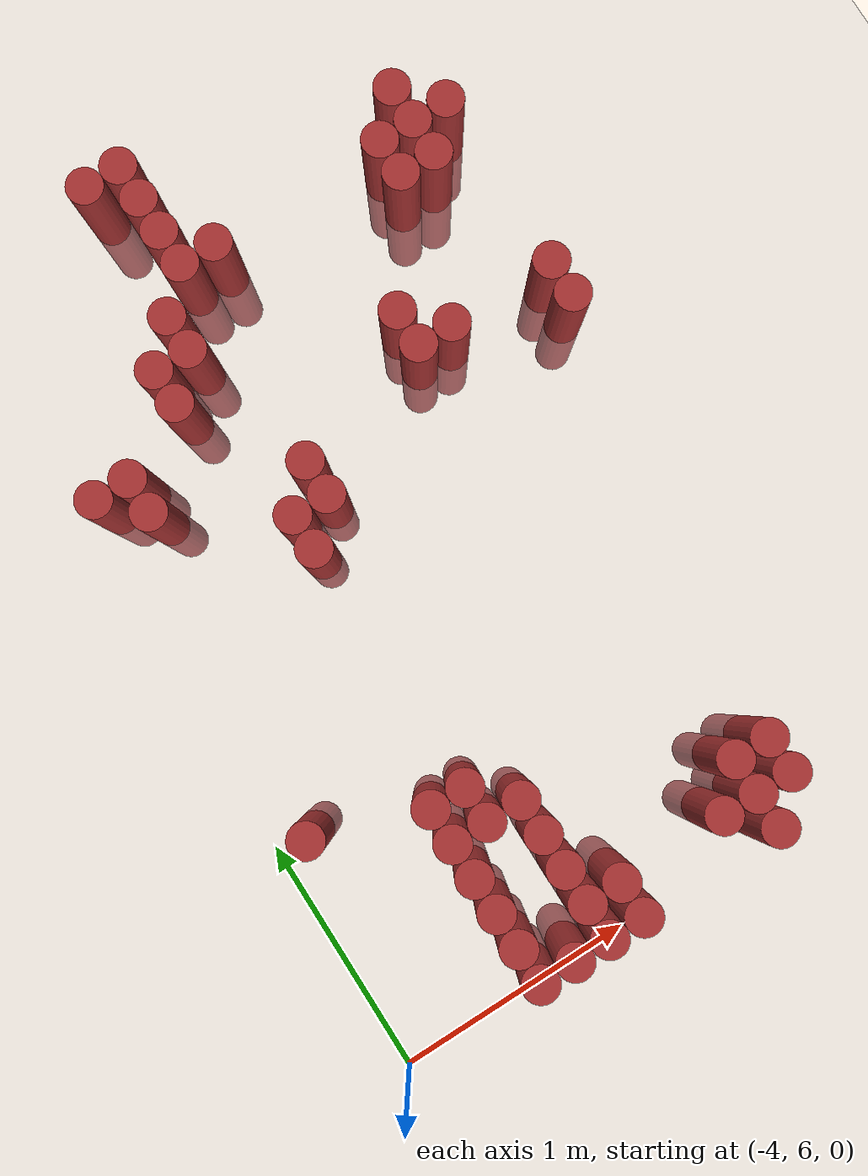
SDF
<sdf version="1.6">
 <world name="default">
  <model name="ground_plane">
   <static>1</static>
   <link name="link">
    <collision name="collision">
     <geometry><plane><normal>0 0 1</normal><size>100 100</size></plane></geometry>
     <surface><friction><ode><mu>100</mu><mu2>50</mu2></ode></friction></surface>
    </collision>
    <visual name="visual">
     <cast_shadows>0</cast_shadows>
     <geometry><plane><normal>0 0 1</normal><size>100 100</size></plane></geometry>
     <material>
      <script><uri>file://media/materials/scripts/gazebo.material</uri><name>Gazebo/Grey</name></script>
     </material>
    </visual>
   </link>
  </model>
  <model name="unit_cylinder_161">
   <static>1</static>
   <pose>-3.825000 6.975000 0.000000 0.000000 0.000000 0.000000</pose>
   <link name="link">
    <inertial>
     <mass>1</mass>
     <inertia><ixx>0.145833</ixx><ixy>0</ixy><ixz>0</ixz><iyy>0.145833</iyy><iyz>0</iyz><izz>0.125</izz></inertia>
    </inertial>
    <collision name="collision">
     <geometry><cylinder><radius>0.075000</radius><length>1</length></cylinder></geometry>
    </collision>
    <visual name="visual">
     <geometry><cylinder><radius>0.075000</radius><length>1</length></cylinder></geometry>
     <material>
      <ambient>0.648000 0.192000 0.192000 1</ambient>
      <diffuse>0.648000 0.192000 0.192000 1</diffuse>
     </material>
     <material>
      <script><name>Gazebo/Grey</name><uri>file://media/materials/scripts/gazebo.material</uri></script>
     </material>
    </visual>
   </link>
  </model>
  <model name="unit_cylinder_162">
   <static>1</static>
   <pose>-3.825000 8.475000 0.000000 0.000000 0.000000 0.000000</pose>
   <link name="link">
    <inertial>
     <mass>1</mass>
     <inertia><ixx>0.145833</ixx><ixy>0</ixy><ixz>0</ixz><iyy>0.145833</iyy><iyz>0</iyz><izz>0.125</izz></inertia>
    </inertial>
    <collision name="collision">
     <geometry><cylinder><radius>0.075000</radius><length>1</length></cylinder></geometry>
    </collision>
    <visual name="visual">
     <geometry><cylinder><radius>0.075000</radius><length>1</length></cylinder></geometry>
     <material>
      <ambient>0.648000 0.192000 0.192000 1</ambient>
      <diffuse>0.648000 0.192000 0.192000 1</diffuse>
     </material>
     <material>
      <script><name>Gazebo/Grey</name><uri>file://media/materials/scripts/gazebo.material</uri></script>
     </material>
    </visual>
   </link>
  </model>
  <model name="unit_cylinder_164">
   <static>1</static>
   <pose>-3.675000 8.325000 0.000000 0.000000 0.000000 0.000000</pose>
   <link name="link">
    <inertial>
     <mass>1</mass>
     <inertia><ixx>0.145833</ixx><ixy>0</ixy><ixz>0</ixz><iyy>0.145833</iyy><iyz>0</iyz><izz>0.125</izz></inertia>
    </inertial>
    <collision name="collision">
     <geometry><cylinder><radius>0.075000</radius><length>1</length></cylinder></geometry>
    </collision>
    <visual name="visual">
     <geometry><cylinder><radius>0.075000</radius><length>1</length></cylinder></geometry>
     <material>
      <ambient>0.648000 0.192000 0.192000 1</ambient>
      <diffuse>0.648000 0.192000 0.192000 1</diffuse>
     </material>
     <material>
      <script><name>Gazebo/Grey</name><uri>file://media/materials/scripts/gazebo.material</uri></script>
     </material>
    </visual>
   </link>
  </model>
  <model name="unit_cylinder_165">
   <static>1</static>
   <pose>-3.675000 8.475000 0.000000 0.000000 0.000000 0.000000</pose>
   <link name="link">
    <inertial>
     <mass>1</mass>
     <inertia><ixx>0.145833</ixx><ixy>0</ixy><ixz>0</ixz><iyy>0.145833</iyy><iyz>0</iyz><izz>0.125</izz></inertia>
    </inertial>
    <collision name="collision">
     <geometry><cylinder><radius>0.075000</radius><length>1</length></cylinder></geometry>
    </collision>
    <visual name="visual">
     <geometry><cylinder><radius>0.075000</radius><length>1</length></cylinder></geometry>
     <material>
      <ambient>0.648000 0.192000 0.192000 1</ambient>
      <diffuse>0.648000 0.192000 0.192000 1</diffuse>
     </material>
     <material>
      <script><name>Gazebo/Grey</name><uri>file://media/materials/scripts/gazebo.material</uri></script>
     </material>
    </visual>
   </link>
  </model>
  <model name="unit_cylinder_172">
   <static>1</static>
   <pose>-3.375000 6.075000 0.000000 0.000000 0.000000 0.000000</pose>
   <link name="link">
    <inertial>
     <mass>1</mass>
     <inertia><ixx>0.145833</ixx><ixy>0</ixy><ixz>0</ixz><iyy>0.145833</iyy><iyz>0</iyz><izz>0.125</izz></inertia>
    </inertial>
    <collision name="collision">
     <geometry><cylinder><radius>0.075000</radius><length>1</length></cylinder></geometry>
    </collision>
    <visual name="visual">
     <geometry><cylinder><radius>0.075000</radius><length>1</length></cylinder></geometry>
     <material>
      <ambient>0.648000 0.192000 0.192000 1</ambient>
      <diffuse>0.648000 0.192000 0.192000 1</diffuse>
     </material>
     <material>
      <script><name>Gazebo/Grey</name><uri>file://media/materials/scripts/gazebo.material</uri></script>
     </material>
    </visual>
   </link>
  </model>
  <model name="unit_cylinder_173">
   <static>1</static>
   <pose>-3.375000 6.225000 0.000000 0.000000 0.000000 0.000000</pose>
   <link name="link">
    <inertial>
     <mass>1</mass>
     <inertia><ixx>0.145833</ixx><ixy>0</ixy><ixz>0</ixz><iyy>0.145833</iyy><iyz>0</iyz><izz>0.125</izz></inertia>
    </inertial>
    <collision name="collision">
     <geometry><cylinder><radius>0.075000</radius><length>1</length></cylinder></geometry>
    </collision>
    <visual name="visual">
     <geometry><cylinder><radius>0.075000</radius><length>1</length></cylinder></geometry>
     <material>
      <ambient>0.648000 0.192000 0.192000 1</ambient>
      <diffuse>0.648000 0.192000 0.192000 1</diffuse>
     </material>
     <material>
      <script><name>Gazebo/Grey</name><uri>file://media/materials/scripts/gazebo.material</uri></script>
     </material>
    </visual>
   </link>
  </model>
  <model name="unit_cylinder_174">
   <static>1</static>
   <pose>-3.375000 6.375000 0.000000 0.000000 0.000000 0.000000</pose>
   <link name="link">
    <inertial>
     <mass>1</mass>
     <inertia><ixx>0.145833</ixx><ixy>0</ixy><ixz>0</ixz><iyy>0.145833</iyy><iyz>0</iyz><izz>0.125</izz></inertia>
    </inertial>
    <collision name="collision">
     <geometry><cylinder><radius>0.075000</radius><length>1</length></cylinder></geometry>
    </collision>
    <visual name="visual">
     <geometry><cylinder><radius>0.075000</radius><length>1</length></cylinder></geometry>
     <material>
      <ambient>0.648000 0.192000 0.192000 1</ambient>
      <diffuse>0.648000 0.192000 0.192000 1</diffuse>
     </material>
     <material>
      <script><name>Gazebo/Grey</name><uri>file://media/materials/scripts/gazebo.material</uri></script>
     </material>
    </visual>
   </link>
  </model>
  <model name="unit_cylinder_175">
   <static>1</static>
   <pose>-3.375000 6.525000 0.000000 0.000000 0.000000 0.000000</pose>
   <link name="link">
    <inertial>
     <mass>1</mass>
     <inertia><ixx>0.145833</ixx><ixy>0</ixy><ixz>0</ixz><iyy>0.145833</iyy><iyz>0</iyz><izz>0.125</izz></inertia>
    </inertial>
    <collision name="collision">
     <geometry><cylinder><radius>0.075000</radius><length>1</length></cylinder></geometry>
    </collision>
    <visual name="visual">
     <geometry><cylinder><radius>0.075000</radius><length>1</length></cylinder></geometry>
     <material>
      <ambient>0.648000 0.192000 0.192000 1</ambient>
      <diffuse>0.648000 0.192000 0.192000 1</diffuse>
     </material>
     <material>
      <script><name>Gazebo/Grey</name><uri>file://media/materials/scripts/gazebo.material</uri></script>
     </material>
    </visual>
   </link>
  </model>
  <model name="unit_cylinder_176">
   <static>1</static>
   <pose>-3.375000 6.675000 0.000000 0.000000 0.000000 0.000000</pose>
   <link name="link">
    <inertial>
     <mass>1</mass>
     <inertia><ixx>0.145833</ixx><ixy>0</ixy><ixz>0</ixz><iyy>0.145833</iyy><iyz>0</iyz><izz>0.125</izz></inertia>
    </inertial>
    <collision name="collision">
     <geometry><cylinder><radius>0.075000</radius><length>1</length></cylinder></geometry>
    </collision>
    <visual name="visual">
     <geometry><cylinder><radius>0.075000</radius><length>1</length></cylinder></geometry>
     <material>
      <ambient>0.648000 0.192000 0.192000 1</ambient>
      <diffuse>0.648000 0.192000 0.192000 1</diffuse>
     </material>
     <material>
      <script><name>Gazebo/Grey</name><uri>file://media/materials/scripts/gazebo.material</uri></script>
     </material>
    </visual>
   </link>
  </model>
  <model name="unit_cylinder_177">
   <static>1</static>
   <pose>-3.375000 6.825000 0.000000 0.000000 0.000000 0.000000</pose>
   <link name="link">
    <inertial>
     <mass>1</mass>
     <inertia><ixx>0.145833</ixx><ixy>0</ixy><ixz>0</ixz><iyy>0.145833</iyy><iyz>0</iyz><izz>0.125</izz></inertia>
    </inertial>
    <collision name="collision">
     <geometry><cylinder><radius>0.075000</radius><length>1</length></cylinder></geometry>
    </collision>
    <visual name="visual">
     <geometry><cylinder><radius>0.075000</radius><length>1</length></cylinder></geometry>
     <material>
      <ambient>0.648000 0.192000 0.192000 1</ambient>
      <diffuse>0.648000 0.192000 0.192000 1</diffuse>
     </material>
     <material>
      <script><name>Gazebo/Grey</name><uri>file://media/materials/scripts/gazebo.material</uri></script>
     </material>
    </visual>
   </link>
  </model>
  <model name="unit_cylinder_178">
   <static>1</static>
   <pose>-3.375000 8.625000 0.000000 0.000000 0.000000 0.000000</pose>
   <link name="link">
    <inertial>
     <mass>1</mass>
     <inertia><ixx>0.145833</ixx><ixy>0</ixy><ixz>0</ixz><iyy>0.145833</iyy><iyz>0</iyz><izz>0.125</izz></inertia>
    </inertial>
    <collision name="collision">
     <geometry><cylinder><radius>0.075000</radius><length>1</length></cylinder></geometry>
    </collision>
    <visual name="visual">
     <geometry><cylinder><radius>0.075000</radius><length>1</length></cylinder></geometry>
     <material>
      <ambient>0.648000 0.192000 0.192000 1</ambient>
      <diffuse>0.648000 0.192000 0.192000 1</diffuse>
     </material>
     <material>
      <script><name>Gazebo/Grey</name><uri>file://media/materials/scripts/gazebo.material</uri></script>
     </material>
    </visual>
   </link>
  </model>
  <model name="unit_cylinder_179">
   <static>1</static>
   <pose>-3.375000 8.775000 0.000000 0.000000 0.000000 0.000000</pose>
   <link name="link">
    <inertial>
     <mass>1</mass>
     <inertia><ixx>0.145833</ixx><ixy>0</ixy><ixz>0</ixz><iyy>0.145833</iyy><iyz>0</iyz><izz>0.125</izz></inertia>
    </inertial>
    <collision name="collision">
     <geometry><cylinder><radius>0.075000</radius><length>1</length></cylinder></geometry>
    </collision>
    <visual name="visual">
     <geometry><cylinder><radius>0.075000</radius><length>1</length></cylinder></geometry>
     <material>
      <ambient>0.648000 0.192000 0.192000 1</ambient>
      <diffuse>0.648000 0.192000 0.192000 1</diffuse>
     </material>
     <material>
      <script><name>Gazebo/Grey</name><uri>file://media/materials/scripts/gazebo.material</uri></script>
     </material>
    </visual>
   </link>
  </model>
  <model name="unit_cylinder_183">
   <static>1</static>
   <pose>-3.225000 6.075000 0.000000 0.000000 0.000000 0.000000</pose>
   <link name="link">
    <inertial>
     <mass>1</mass>
     <inertia><ixx>0.145833</ixx><ixy>0</ixy><ixz>0</ixz><iyy>0.145833</iyy><iyz>0</iyz><izz>0.125</izz></inertia>
    </inertial>
    <collision name="collision">
     <geometry><cylinder><radius>0.075000</radius><length>1</length></cylinder></geometry>
    </collision>
    <visual name="visual">
     <geometry><cylinder><radius>0.075000</radius><length>1</length></cylinder></geometry>
     <material>
      <ambient>0.648000 0.192000 0.192000 1</ambient>
      <diffuse>0.648000 0.192000 0.192000 1</diffuse>
     </material>
     <material>
      <script><name>Gazebo/Grey</name><uri>file://media/materials/scripts/gazebo.material</uri></script>
     </material>
    </visual>
   </link>
  </model>
  <model name="unit_cylinder_184">
   <static>1</static>
   <pose>-3.225000 6.675000 0.000000 0.000000 0.000000 0.000000</pose>
   <link name="link">
    <inertial>
     <mass>1</mass>
     <inertia><ixx>0.145833</ixx><ixy>0</ixy><ixz>0</ixz><iyy>0.145833</iyy><iyz>0</iyz><izz>0.125</izz></inertia>
    </inertial>
    <collision name="collision">
     <geometry><cylinder><radius>0.075000</radius><length>1</length></cylinder></geometry>
    </collision>
    <visual name="visual">
     <geometry><cylinder><radius>0.075000</radius><length>1</length></cylinder></geometry>
     <material>
      <ambient>0.648000 0.192000 0.192000 1</ambient>
      <diffuse>0.648000 0.192000 0.192000 1</diffuse>
     </material>
     <material>
      <script><name>Gazebo/Grey</name><uri>file://media/materials/scripts/gazebo.material</uri></script>
     </material>
    </visual>
   </link>
  </model>
  <model name="unit_cylinder_185">
   <static>1</static>
   <pose>-3.225000 6.825000 0.000000 0.000000 0.000000 0.000000</pose>
   <link name="link">
    <inertial>
     <mass>1</mass>
     <inertia><ixx>0.145833</ixx><ixy>0</ixy><ixz>0</ixz><iyy>0.145833</iyy><iyz>0</iyz><izz>0.125</izz></inertia>
    </inertial>
    <collision name="collision">
     <geometry><cylinder><radius>0.075000</radius><length>1</length></cylinder></geometry>
    </collision>
    <visual name="visual">
     <geometry><cylinder><radius>0.075000</radius><length>1</length></cylinder></geometry>
     <material>
      <ambient>0.648000 0.192000 0.192000 1</ambient>
      <diffuse>0.648000 0.192000 0.192000 1</diffuse>
     </material>
     <material>
      <script><name>Gazebo/Grey</name><uri>file://media/materials/scripts/gazebo.material</uri></script>
     </material>
    </visual>
   </link>
  </model>
  <model name="unit_cylinder_186">
   <static>1</static>
   <pose>-3.225000 7.875000 0.000000 0.000000 0.000000 0.000000</pose>
   <link name="link">
    <inertial>
     <mass>1</mass>
     <inertia><ixx>0.145833</ixx><ixy>0</ixy><ixz>0</ixz><iyy>0.145833</iyy><iyz>0</iyz><izz>0.125</izz></inertia>
    </inertial>
    <collision name="collision">
     <geometry><cylinder><radius>0.075000</radius><length>1</length></cylinder></geometry>
    </collision>
    <visual name="visual">
     <geometry><cylinder><radius>0.075000</radius><length>1</length></cylinder></geometry>
     <material>
      <ambient>0.648000 0.192000 0.192000 1</ambient>
      <diffuse>0.648000 0.192000 0.192000 1</diffuse>
     </material>
     <material>
      <script><name>Gazebo/Grey</name><uri>file://media/materials/scripts/gazebo.material</uri></script>
     </material>
    </visual>
   </link>
  </model>
  <model name="unit_cylinder_187">
   <static>1</static>
   <pose>-3.225000 8.025000 0.000000 0.000000 0.000000 0.000000</pose>
   <link name="link">
    <inertial>
     <mass>1</mass>
     <inertia><ixx>0.145833</ixx><ixy>0</ixy><ixz>0</ixz><iyy>0.145833</iyy><iyz>0</iyz><izz>0.125</izz></inertia>
    </inertial>
    <collision name="collision">
     <geometry><cylinder><radius>0.075000</radius><length>1</length></cylinder></geometry>
    </collision>
    <visual name="visual">
     <geometry><cylinder><radius>0.075000</radius><length>1</length></cylinder></geometry>
     <material>
      <ambient>0.648000 0.192000 0.192000 1</ambient>
      <diffuse>0.648000 0.192000 0.192000 1</diffuse>
     </material>
     <material>
      <script><name>Gazebo/Grey</name><uri>file://media/materials/scripts/gazebo.material</uri></script>
     </material>
    </visual>
   </link>
  </model>
  <model name="unit_cylinder_188">
   <static>1</static>
   <pose>-3.225000 8.775000 0.000000 0.000000 0.000000 0.000000</pose>
   <link name="link">
    <inertial>
     <mass>1</mass>
     <inertia><ixx>0.145833</ixx><ixy>0</ixy><ixz>0</ixz><iyy>0.145833</iyy><iyz>0</iyz><izz>0.125</izz></inertia>
    </inertial>
    <collision name="collision">
     <geometry><cylinder><radius>0.075000</radius><length>1</length></cylinder></geometry>
    </collision>
    <visual name="visual">
     <geometry><cylinder><radius>0.075000</radius><length>1</length></cylinder></geometry>
     <material>
      <ambient>0.648000 0.192000 0.192000 1</ambient>
      <diffuse>0.648000 0.192000 0.192000 1</diffuse>
     </material>
     <material>
      <script><name>Gazebo/Grey</name><uri>file://media/materials/scripts/gazebo.material</uri></script>
     </material>
    </visual>
   </link>
  </model>
  <model name="unit_cylinder_189">
   <static>1</static>
   <pose>-3.225000 8.925000 0.000000 0.000000 0.000000 0.000000</pose>
   <link name="link">
    <inertial>
     <mass>1</mass>
     <inertia><ixx>0.145833</ixx><ixy>0</ixy><ixz>0</ixz><iyy>0.145833</iyy><iyz>0</iyz><izz>0.125</izz></inertia>
    </inertial>
    <collision name="collision">
     <geometry><cylinder><radius>0.075000</radius><length>1</length></cylinder></geometry>
    </collision>
    <visual name="visual">
     <geometry><cylinder><radius>0.075000</radius><length>1</length></cylinder></geometry>
     <material>
      <ambient>0.648000 0.192000 0.192000 1</ambient>
      <diffuse>0.648000 0.192000 0.192000 1</diffuse>
     </material>
     <material>
      <script><name>Gazebo/Grey</name><uri>file://media/materials/scripts/gazebo.material</uri></script>
     </material>
    </visual>
   </link>
  </model>
  <model name="unit_cylinder_190">
   <static>1</static>
   <pose>-3.225000 9.525000 0.000000 0.000000 0.000000 0.000000</pose>
   <link name="link">
    <inertial>
     <mass>1</mass>
     <inertia><ixx>0.145833</ixx><ixy>0</ixy><ixz>0</ixz><iyy>0.145833</iyy><iyz>0</iyz><izz>0.125</izz></inertia>
    </inertial>
    <collision name="collision">
     <geometry><cylinder><radius>0.075000</radius><length>1</length></cylinder></geometry>
    </collision>
    <visual name="visual">
     <geometry><cylinder><radius>0.075000</radius><length>1</length></cylinder></geometry>
     <material>
      <ambient>0.648000 0.192000 0.192000 1</ambient>
      <diffuse>0.648000 0.192000 0.192000 1</diffuse>
     </material>
     <material>
      <script><name>Gazebo/Grey</name><uri>file://media/materials/scripts/gazebo.material</uri></script>
     </material>
    </visual>
   </link>
  </model>
  <model name="unit_cylinder_194">
   <static>1</static>
   <pose>-3.075000 6.075000 0.000000 0.000000 0.000000 0.000000</pose>
   <link name="link">
    <inertial>
     <mass>1</mass>
     <inertia><ixx>0.145833</ixx><ixy>0</ixy><ixz>0</ixz><iyy>0.145833</iyy><iyz>0</iyz><izz>0.125</izz></inertia>
    </inertial>
    <collision name="collision">
     <geometry><cylinder><radius>0.075000</radius><length>1</length></cylinder></geometry>
    </collision>
    <visual name="visual">
     <geometry><cylinder><radius>0.075000</radius><length>1</length></cylinder></geometry>
     <material>
      <ambient>0.648000 0.192000 0.192000 1</ambient>
      <diffuse>0.648000 0.192000 0.192000 1</diffuse>
     </material>
     <material>
      <script><name>Gazebo/Grey</name><uri>file://media/materials/scripts/gazebo.material</uri></script>
     </material>
    </visual>
   </link>
  </model>
  <model name="unit_cylinder_195">
   <static>1</static>
   <pose>-3.075000 6.225000 0.000000 0.000000 0.000000 0.000000</pose>
   <link name="link">
    <inertial>
     <mass>1</mass>
     <inertia><ixx>0.145833</ixx><ixy>0</ixy><ixz>0</ixz><iyy>0.145833</iyy><iyz>0</iyz><izz>0.125</izz></inertia>
    </inertial>
    <collision name="collision">
     <geometry><cylinder><radius>0.075000</radius><length>1</length></cylinder></geometry>
    </collision>
    <visual name="visual">
     <geometry><cylinder><radius>0.075000</radius><length>1</length></cylinder></geometry>
     <material>
      <ambient>0.648000 0.192000 0.192000 1</ambient>
      <diffuse>0.648000 0.192000 0.192000 1</diffuse>
     </material>
     <material>
      <script><name>Gazebo/Grey</name><uri>file://media/materials/scripts/gazebo.material</uri></script>
     </material>
    </visual>
   </link>
  </model>
  <model name="unit_cylinder_196">
   <static>1</static>
   <pose>-3.075000 6.375000 0.000000 0.000000 0.000000 0.000000</pose>
   <link name="link">
    <inertial>
     <mass>1</mass>
     <inertia><ixx>0.145833</ixx><ixy>0</ixy><ixz>0</ixz><iyy>0.145833</iyy><iyz>0</iyz><izz>0.125</izz></inertia>
    </inertial>
    <collision name="collision">
     <geometry><cylinder><radius>0.075000</radius><length>1</length></cylinder></geometry>
    </collision>
    <visual name="visual">
     <geometry><cylinder><radius>0.075000</radius><length>1</length></cylinder></geometry>
     <material>
      <ambient>0.648000 0.192000 0.192000 1</ambient>
      <diffuse>0.648000 0.192000 0.192000 1</diffuse>
     </material>
     <material>
      <script><name>Gazebo/Grey</name><uri>file://media/materials/scripts/gazebo.material</uri></script>
     </material>
    </visual>
   </link>
  </model>
  <model name="unit_cylinder_197">
   <static>1</static>
   <pose>-3.075000 6.525000 0.000000 0.000000 0.000000 0.000000</pose>
   <link name="link">
    <inertial>
     <mass>1</mass>
     <inertia><ixx>0.145833</ixx><ixy>0</ixy><ixz>0</ixz><iyy>0.145833</iyy><iyz>0</iyz><izz>0.125</izz></inertia>
    </inertial>
    <collision name="collision">
     <geometry><cylinder><radius>0.075000</radius><length>1</length></cylinder></geometry>
    </collision>
    <visual name="visual">
     <geometry><cylinder><radius>0.075000</radius><length>1</length></cylinder></geometry>
     <material>
      <ambient>0.648000 0.192000 0.192000 1</ambient>
      <diffuse>0.648000 0.192000 0.192000 1</diffuse>
     </material>
     <material>
      <script><name>Gazebo/Grey</name><uri>file://media/materials/scripts/gazebo.material</uri></script>
     </material>
    </visual>
   </link>
  </model>
  <model name="unit_cylinder_198">
   <static>1</static>
   <pose>-3.075000 6.675000 0.000000 0.000000 0.000000 0.000000</pose>
   <link name="link">
    <inertial>
     <mass>1</mass>
     <inertia><ixx>0.145833</ixx><ixy>0</ixy><ixz>0</ixz><iyy>0.145833</iyy><iyz>0</iyz><izz>0.125</izz></inertia>
    </inertial>
    <collision name="collision">
     <geometry><cylinder><radius>0.075000</radius><length>1</length></cylinder></geometry>
    </collision>
    <visual name="visual">
     <geometry><cylinder><radius>0.075000</radius><length>1</length></cylinder></geometry>
     <material>
      <ambient>0.648000 0.192000 0.192000 1</ambient>
      <diffuse>0.648000 0.192000 0.192000 1</diffuse>
     </material>
     <material>
      <script><name>Gazebo/Grey</name><uri>file://media/materials/scripts/gazebo.material</uri></script>
     </material>
    </visual>
   </link>
  </model>
  <model name="unit_cylinder_199">
   <static>1</static>
   <pose>-3.075000 8.025000 0.000000 0.000000 0.000000 0.000000</pose>
   <link name="link">
    <inertial>
     <mass>1</mass>
     <inertia><ixx>0.145833</ixx><ixy>0</ixy><ixz>0</ixz><iyy>0.145833</iyy><iyz>0</iyz><izz>0.125</izz></inertia>
    </inertial>
    <collision name="collision">
     <geometry><cylinder><radius>0.075000</radius><length>1</length></cylinder></geometry>
    </collision>
    <visual name="visual">
     <geometry><cylinder><radius>0.075000</radius><length>1</length></cylinder></geometry>
     <material>
      <ambient>0.648000 0.192000 0.192000 1</ambient>
      <diffuse>0.648000 0.192000 0.192000 1</diffuse>
     </material>
     <material>
      <script><name>Gazebo/Grey</name><uri>file://media/materials/scripts/gazebo.material</uri></script>
     </material>
    </visual>
   </link>
  </model>
  <model name="unit_cylinder_200">
   <static>1</static>
   <pose>-3.075000 8.175000 0.000000 0.000000 0.000000 0.000000</pose>
   <link name="link">
    <inertial>
     <mass>1</mass>
     <inertia><ixx>0.145833</ixx><ixy>0</ixy><ixz>0</ixz><iyy>0.145833</iyy><iyz>0</iyz><izz>0.125</izz></inertia>
    </inertial>
    <collision name="collision">
     <geometry><cylinder><radius>0.075000</radius><length>1</length></cylinder></geometry>
    </collision>
    <visual name="visual">
     <geometry><cylinder><radius>0.075000</radius><length>1</length></cylinder></geometry>
     <material>
      <ambient>0.648000 0.192000 0.192000 1</ambient>
      <diffuse>0.648000 0.192000 0.192000 1</diffuse>
     </material>
     <material>
      <script><name>Gazebo/Grey</name><uri>file://media/materials/scripts/gazebo.material</uri></script>
     </material>
    </visual>
   </link>
  </model>
  <model name="unit_cylinder_201">
   <static>1</static>
   <pose>-3.075000 9.075000 0.000000 0.000000 0.000000 0.000000</pose>
   <link name="link">
    <inertial>
     <mass>1</mass>
     <inertia><ixx>0.145833</ixx><ixy>0</ixy><ixz>0</ixz><iyy>0.145833</iyy><iyz>0</iyz><izz>0.125</izz></inertia>
    </inertial>
    <collision name="collision">
     <geometry><cylinder><radius>0.075000</radius><length>1</length></cylinder></geometry>
    </collision>
    <visual name="visual">
     <geometry><cylinder><radius>0.075000</radius><length>1</length></cylinder></geometry>
     <material>
      <ambient>0.648000 0.192000 0.192000 1</ambient>
      <diffuse>0.648000 0.192000 0.192000 1</diffuse>
     </material>
     <material>
      <script><name>Gazebo/Grey</name><uri>file://media/materials/scripts/gazebo.material</uri></script>
     </material>
    </visual>
   </link>
  </model>
  <model name="unit_cylinder_202">
   <static>1</static>
   <pose>-3.075000 9.225000 0.000000 0.000000 0.000000 0.000000</pose>
   <link name="link">
    <inertial>
     <mass>1</mass>
     <inertia><ixx>0.145833</ixx><ixy>0</ixy><ixz>0</ixz><iyy>0.145833</iyy><iyz>0</iyz><izz>0.125</izz></inertia>
    </inertial>
    <collision name="collision">
     <geometry><cylinder><radius>0.075000</radius><length>1</length></cylinder></geometry>
    </collision>
    <visual name="visual">
     <geometry><cylinder><radius>0.075000</radius><length>1</length></cylinder></geometry>
     <material>
      <ambient>0.648000 0.192000 0.192000 1</ambient>
      <diffuse>0.648000 0.192000 0.192000 1</diffuse>
     </material>
     <material>
      <script><name>Gazebo/Grey</name><uri>file://media/materials/scripts/gazebo.material</uri></script>
     </material>
    </visual>
   </link>
  </model>
  <model name="unit_cylinder_203">
   <static>1</static>
   <pose>-3.075000 9.375000 0.000000 0.000000 0.000000 0.000000</pose>
   <link name="link">
    <inertial>
     <mass>1</mass>
     <inertia><ixx>0.145833</ixx><ixy>0</ixy><ixz>0</ixz><iyy>0.145833</iyy><iyz>0</iyz><izz>0.125</izz></inertia>
    </inertial>
    <collision name="collision">
     <geometry><cylinder><radius>0.075000</radius><length>1</length></cylinder></geometry>
    </collision>
    <visual name="visual">
     <geometry><cylinder><radius>0.075000</radius><length>1</length></cylinder></geometry>
     <material>
      <ambient>0.648000 0.192000 0.192000 1</ambient>
      <diffuse>0.648000 0.192000 0.192000 1</diffuse>
     </material>
     <material>
      <script><name>Gazebo/Grey</name><uri>file://media/materials/scripts/gazebo.material</uri></script>
     </material>
    </visual>
   </link>
  </model>
  <model name="unit_cylinder_204">
   <static>1</static>
   <pose>-3.075000 9.525000 0.000000 0.000000 0.000000 0.000000</pose>
   <link name="link">
    <inertial>
     <mass>1</mass>
     <inertia><ixx>0.145833</ixx><ixy>0</ixy><ixz>0</ixz><iyy>0.145833</iyy><iyz>0</iyz><izz>0.125</izz></inertia>
    </inertial>
    <collision name="collision">
     <geometry><cylinder><radius>0.075000</radius><length>1</length></cylinder></geometry>
    </collision>
    <visual name="visual">
     <geometry><cylinder><radius>0.075000</radius><length>1</length></cylinder></geometry>
     <material>
      <ambient>0.648000 0.192000 0.192000 1</ambient>
      <diffuse>0.648000 0.192000 0.192000 1</diffuse>
     </material>
     <material>
      <script><name>Gazebo/Grey</name><uri>file://media/materials/scripts/gazebo.material</uri></script>
     </material>
    </visual>
   </link>
  </model>
  <model name="unit_cylinder_208">
   <static>1</static>
   <pose>-2.925000 6.075000 0.000000 0.000000 0.000000 0.000000</pose>
   <link name="link">
    <inertial>
     <mass>1</mass>
     <inertia><ixx>0.145833</ixx><ixy>0</ixy><ixz>0</ixz><iyy>0.145833</iyy><iyz>0</iyz><izz>0.125</izz></inertia>
    </inertial>
    <collision name="collision">
     <geometry><cylinder><radius>0.075000</radius><length>1</length></cylinder></geometry>
    </collision>
    <visual name="visual">
     <geometry><cylinder><radius>0.075000</radius><length>1</length></cylinder></geometry>
     <material>
      <ambient>0.648000 0.192000 0.192000 1</ambient>
      <diffuse>0.648000 0.192000 0.192000 1</diffuse>
     </material>
     <material>
      <script><name>Gazebo/Grey</name><uri>file://media/materials/scripts/gazebo.material</uri></script>
     </material>
    </visual>
   </link>
  </model>
  <model name="unit_cylinder_209">
   <static>1</static>
   <pose>-2.925000 6.225000 0.000000 0.000000 0.000000 0.000000</pose>
   <link name="link">
    <inertial>
     <mass>1</mass>
     <inertia><ixx>0.145833</ixx><ixy>0</ixy><ixz>0</ixz><iyy>0.145833</iyy><iyz>0</iyz><izz>0.125</izz></inertia>
    </inertial>
    <collision name="collision">
     <geometry><cylinder><radius>0.075000</radius><length>1</length></cylinder></geometry>
    </collision>
    <visual name="visual">
     <geometry><cylinder><radius>0.075000</radius><length>1</length></cylinder></geometry>
     <material>
      <ambient>0.648000 0.192000 0.192000 1</ambient>
      <diffuse>0.648000 0.192000 0.192000 1</diffuse>
     </material>
     <material>
      <script><name>Gazebo/Grey</name><uri>file://media/materials/scripts/gazebo.material</uri></script>
     </material>
    </visual>
   </link>
  </model>
  <model name="unit_cylinder_210">
   <static>1</static>
   <pose>-2.925000 9.075000 0.000000 0.000000 0.000000 0.000000</pose>
   <link name="link">
    <inertial>
     <mass>1</mass>
     <inertia><ixx>0.145833</ixx><ixy>0</ixy><ixz>0</ixz><iyy>0.145833</iyy><iyz>0</iyz><izz>0.125</izz></inertia>
    </inertial>
    <collision name="collision">
     <geometry><cylinder><radius>0.075000</radius><length>1</length></cylinder></geometry>
    </collision>
    <visual name="visual">
     <geometry><cylinder><radius>0.075000</radius><length>1</length></cylinder></geometry>
     <material>
      <ambient>0.648000 0.192000 0.192000 1</ambient>
      <diffuse>0.648000 0.192000 0.192000 1</diffuse>
     </material>
     <material>
      <script><name>Gazebo/Grey</name><uri>file://media/materials/scripts/gazebo.material</uri></script>
     </material>
    </visual>
   </link>
  </model>
  <model name="unit_cylinder_216">
   <static>1</static>
   <pose>-2.475000 6.225000 0.000000 0.000000 0.000000 0.000000</pose>
   <link name="link">
    <inertial>
     <mass>1</mass>
     <inertia><ixx>0.145833</ixx><ixy>0</ixy><ixz>0</ixz><iyy>0.145833</iyy><iyz>0</iyz><izz>0.125</izz></inertia>
    </inertial>
    <collision name="collision">
     <geometry><cylinder><radius>0.075000</radius><length>1</length></cylinder></geometry>
    </collision>
    <visual name="visual">
     <geometry><cylinder><radius>0.075000</radius><length>1</length></cylinder></geometry>
     <material>
      <ambient>0.648000 0.192000 0.192000 1</ambient>
      <diffuse>0.648000 0.192000 0.192000 1</diffuse>
     </material>
     <material>
      <script><name>Gazebo/Grey</name><uri>file://media/materials/scripts/gazebo.material</uri></script>
     </material>
    </visual>
   </link>
  </model>
  <model name="unit_cylinder_217">
   <static>1</static>
   <pose>-2.475000 8.325000 0.000000 0.000000 0.000000 0.000000</pose>
   <link name="link">
    <inertial>
     <mass>1</mass>
     <inertia><ixx>0.145833</ixx><ixy>0</ixy><ixz>0</ixz><iyy>0.145833</iyy><iyz>0</iyz><izz>0.125</izz></inertia>
    </inertial>
    <collision name="collision">
     <geometry><cylinder><radius>0.075000</radius><length>1</length></cylinder></geometry>
    </collision>
    <visual name="visual">
     <geometry><cylinder><radius>0.075000</radius><length>1</length></cylinder></geometry>
     <material>
      <ambient>0.648000 0.192000 0.192000 1</ambient>
      <diffuse>0.648000 0.192000 0.192000 1</diffuse>
     </material>
     <material>
      <script><name>Gazebo/Grey</name><uri>file://media/materials/scripts/gazebo.material</uri></script>
     </material>
    </visual>
   </link>
  </model>
  <model name="unit_cylinder_218">
   <static>1</static>
   <pose>-2.475000 8.475000 0.000000 0.000000 0.000000 0.000000</pose>
   <link name="link">
    <inertial>
     <mass>1</mass>
     <inertia><ixx>0.145833</ixx><ixy>0</ixy><ixz>0</ixz><iyy>0.145833</iyy><iyz>0</iyz><izz>0.125</izz></inertia>
    </inertial>
    <collision name="collision">
     <geometry><cylinder><radius>0.075000</radius><length>1</length></cylinder></geometry>
    </collision>
    <visual name="visual">
     <geometry><cylinder><radius>0.075000</radius><length>1</length></cylinder></geometry>
     <material>
      <ambient>0.648000 0.192000 0.192000 1</ambient>
      <diffuse>0.648000 0.192000 0.192000 1</diffuse>
     </material>
     <material>
      <script><name>Gazebo/Grey</name><uri>file://media/materials/scripts/gazebo.material</uri></script>
     </material>
    </visual>
   </link>
  </model>
  <model name="unit_cylinder_219">
   <static>1</static>
   <pose>-2.325000 6.075000 0.000000 0.000000 0.000000 0.000000</pose>
   <link name="link">
    <inertial>
     <mass>1</mass>
     <inertia><ixx>0.145833</ixx><ixy>0</ixy><ixz>0</ixz><iyy>0.145833</iyy><iyz>0</iyz><izz>0.125</izz></inertia>
    </inertial>
    <collision name="collision">
     <geometry><cylinder><radius>0.075000</radius><length>1</length></cylinder></geometry>
    </collision>
    <visual name="visual">
     <geometry><cylinder><radius>0.075000</radius><length>1</length></cylinder></geometry>
     <material>
      <ambient>0.648000 0.192000 0.192000 1</ambient>
      <diffuse>0.648000 0.192000 0.192000 1</diffuse>
     </material>
     <material>
      <script><name>Gazebo/Grey</name><uri>file://media/materials/scripts/gazebo.material</uri></script>
     </material>
    </visual>
   </link>
  </model>
  <model name="unit_cylinder_220">
   <static>1</static>
   <pose>-2.325000 6.225000 0.000000 0.000000 0.000000 0.000000</pose>
   <link name="link">
    <inertial>
     <mass>1</mass>
     <inertia><ixx>0.145833</ixx><ixy>0</ixy><ixz>0</ixz><iyy>0.145833</iyy><iyz>0</iyz><izz>0.125</izz></inertia>
    </inertial>
    <collision name="collision">
     <geometry><cylinder><radius>0.075000</radius><length>1</length></cylinder></geometry>
    </collision>
    <visual name="visual">
     <geometry><cylinder><radius>0.075000</radius><length>1</length></cylinder></geometry>
     <material>
      <ambient>0.648000 0.192000 0.192000 1</ambient>
      <diffuse>0.648000 0.192000 0.192000 1</diffuse>
     </material>
     <material>
      <script><name>Gazebo/Grey</name><uri>file://media/materials/scripts/gazebo.material</uri></script>
     </material>
    </visual>
   </link>
  </model>
  <model name="unit_cylinder_221">
   <static>1</static>
   <pose>-2.325000 6.375000 0.000000 0.000000 0.000000 0.000000</pose>
   <link name="link">
    <inertial>
     <mass>1</mass>
     <inertia><ixx>0.145833</ixx><ixy>0</ixy><ixz>0</ixz><iyy>0.145833</iyy><iyz>0</iyz><izz>0.125</izz></inertia>
    </inertial>
    <collision name="collision">
     <geometry><cylinder><radius>0.075000</radius><length>1</length></cylinder></geometry>
    </collision>
    <visual name="visual">
     <geometry><cylinder><radius>0.075000</radius><length>1</length></cylinder></geometry>
     <material>
      <ambient>0.648000 0.192000 0.192000 1</ambient>
      <diffuse>0.648000 0.192000 0.192000 1</diffuse>
     </material>
     <material>
      <script><name>Gazebo/Grey</name><uri>file://media/materials/scripts/gazebo.material</uri></script>
     </material>
    </visual>
   </link>
  </model>
  <model name="unit_cylinder_222">
   <static>1</static>
   <pose>-2.325000 8.325000 0.000000 0.000000 0.000000 0.000000</pose>
   <link name="link">
    <inertial>
     <mass>1</mass>
     <inertia><ixx>0.145833</ixx><ixy>0</ixy><ixz>0</ixz><iyy>0.145833</iyy><iyz>0</iyz><izz>0.125</izz></inertia>
    </inertial>
    <collision name="collision">
     <geometry><cylinder><radius>0.075000</radius><length>1</length></cylinder></geometry>
    </collision>
    <visual name="visual">
     <geometry><cylinder><radius>0.075000</radius><length>1</length></cylinder></geometry>
     <material>
      <ambient>0.648000 0.192000 0.192000 1</ambient>
      <diffuse>0.648000 0.192000 0.192000 1</diffuse>
     </material>
     <material>
      <script><name>Gazebo/Grey</name><uri>file://media/materials/scripts/gazebo.material</uri></script>
     </material>
    </visual>
   </link>
  </model>
  <model name="unit_cylinder_223">
   <static>1</static>
   <pose>-2.175000 6.225000 0.000000 0.000000 0.000000 0.000000</pose>
   <link name="link">
    <inertial>
     <mass>1</mass>
     <inertia><ixx>0.145833</ixx><ixy>0</ixy><ixz>0</ixz><iyy>0.145833</iyy><iyz>0</iyz><izz>0.125</izz></inertia>
    </inertial>
    <collision name="collision">
     <geometry><cylinder><radius>0.075000</radius><length>1</length></cylinder></geometry>
    </collision>
    <visual name="visual">
     <geometry><cylinder><radius>0.075000</radius><length>1</length></cylinder></geometry>
     <material>
      <ambient>0.648000 0.192000 0.192000 1</ambient>
      <diffuse>0.648000 0.192000 0.192000 1</diffuse>
     </material>
     <material>
      <script><name>Gazebo/Grey</name><uri>file://media/materials/scripts/gazebo.material</uri></script>
     </material>
    </visual>
   </link>
  </model>
  <model name="unit_cylinder_224">
   <static>1</static>
   <pose>-2.175000 6.375000 0.000000 0.000000 0.000000 0.000000</pose>
   <link name="link">
    <inertial>
     <mass>1</mass>
     <inertia><ixx>0.145833</ixx><ixy>0</ixy><ixz>0</ixz><iyy>0.145833</iyy><iyz>0</iyz><izz>0.125</izz></inertia>
    </inertial>
    <collision name="collision">
     <geometry><cylinder><radius>0.075000</radius><length>1</length></cylinder></geometry>
    </collision>
    <visual name="visual">
     <geometry><cylinder><radius>0.075000</radius><length>1</length></cylinder></geometry>
     <material>
      <ambient>0.648000 0.192000 0.192000 1</ambient>
      <diffuse>0.648000 0.192000 0.192000 1</diffuse>
     </material>
     <material>
      <script><name>Gazebo/Grey</name><uri>file://media/materials/scripts/gazebo.material</uri></script>
     </material>
    </visual>
   </link>
  </model>
  <model name="unit_cylinder_225">
   <static>1</static>
   <pose>-2.175000 8.925000 0.000000 0.000000 0.000000 0.000000</pose>
   <link name="link">
    <inertial>
     <mass>1</mass>
     <inertia><ixx>0.145833</ixx><ixy>0</ixy><ixz>0</ixz><iyy>0.145833</iyy><iyz>0</iyz><izz>0.125</izz></inertia>
    </inertial>
    <collision name="collision">
     <geometry><cylinder><radius>0.075000</radius><length>1</length></cylinder></geometry>
    </collision>
    <visual name="visual">
     <geometry><cylinder><radius>0.075000</radius><length>1</length></cylinder></geometry>
     <material>
      <ambient>0.648000 0.192000 0.192000 1</ambient>
      <diffuse>0.648000 0.192000 0.192000 1</diffuse>
     </material>
     <material>
      <script><name>Gazebo/Grey</name><uri>file://media/materials/scripts/gazebo.material</uri></script>
     </material>
    </visual>
   </link>
  </model>
  <model name="unit_cylinder_226">
   <static>1</static>
   <pose>-2.175000 9.075000 0.000000 0.000000 0.000000 0.000000</pose>
   <link name="link">
    <inertial>
     <mass>1</mass>
     <inertia><ixx>0.145833</ixx><ixy>0</ixy><ixz>0</ixz><iyy>0.145833</iyy><iyz>0</iyz><izz>0.125</izz></inertia>
    </inertial>
    <collision name="collision">
     <geometry><cylinder><radius>0.075000</radius><length>1</length></cylinder></geometry>
    </collision>
    <visual name="visual">
     <geometry><cylinder><radius>0.075000</radius><length>1</length></cylinder></geometry>
     <material>
      <ambient>0.648000 0.192000 0.192000 1</ambient>
      <diffuse>0.648000 0.192000 0.192000 1</diffuse>
     </material>
     <material>
      <script><name>Gazebo/Grey</name><uri>file://media/materials/scripts/gazebo.material</uri></script>
     </material>
    </visual>
   </link>
  </model>
  <model name="unit_cylinder_227">
   <static>1</static>
   <pose>-2.025000 8.925000 0.000000 0.000000 0.000000 0.000000</pose>
   <link name="link">
    <inertial>
     <mass>1</mass>
     <inertia><ixx>0.145833</ixx><ixy>0</ixy><ixz>0</ixz><iyy>0.145833</iyy><iyz>0</iyz><izz>0.125</izz></inertia>
    </inertial>
    <collision name="collision">
     <geometry><cylinder><radius>0.075000</radius><length>1</length></cylinder></geometry>
    </collision>
    <visual name="visual">
     <geometry><cylinder><radius>0.075000</radius><length>1</length></cylinder></geometry>
     <material>
      <ambient>0.648000 0.192000 0.192000 1</ambient>
      <diffuse>0.648000 0.192000 0.192000 1</diffuse>
     </material>
     <material>
      <script><name>Gazebo/Grey</name><uri>file://media/materials/scripts/gazebo.material</uri></script>
     </material>
    </visual>
   </link>
  </model>
  <model name="unit_cylinder_228">
   <static>1</static>
   <pose>-2.025000 9.075000 0.000000 0.000000 0.000000 0.000000</pose>
   <link name="link">
    <inertial>
     <mass>1</mass>
     <inertia><ixx>0.145833</ixx><ixy>0</ixy><ixz>0</ixz><iyy>0.145833</iyy><iyz>0</iyz><izz>0.125</izz></inertia>
    </inertial>
    <collision name="collision">
     <geometry><cylinder><radius>0.075000</radius><length>1</length></cylinder></geometry>
    </collision>
    <visual name="visual">
     <geometry><cylinder><radius>0.075000</radius><length>1</length></cylinder></geometry>
     <material>
      <ambient>0.648000 0.192000 0.192000 1</ambient>
      <diffuse>0.648000 0.192000 0.192000 1</diffuse>
     </material>
     <material>
      <script><name>Gazebo/Grey</name><uri>file://media/materials/scripts/gazebo.material</uri></script>
     </material>
    </visual>
   </link>
  </model>
  <model name="unit_cylinder_229">
   <static>1</static>
   <pose>-2.025000 9.225000 0.000000 0.000000 0.000000 0.000000</pose>
   <link name="link">
    <inertial>
     <mass>1</mass>
     <inertia><ixx>0.145833</ixx><ixy>0</ixy><ixz>0</ixz><iyy>0.145833</iyy><iyz>0</iyz><izz>0.125</izz></inertia>
    </inertial>
    <collision name="collision">
     <geometry><cylinder><radius>0.075000</radius><length>1</length></cylinder></geometry>
    </collision>
    <visual name="visual">
     <geometry><cylinder><radius>0.075000</radius><length>1</length></cylinder></geometry>
     <material>
      <ambient>0.648000 0.192000 0.192000 1</ambient>
      <diffuse>0.648000 0.192000 0.192000 1</diffuse>
     </material>
     <material>
      <script><name>Gazebo/Grey</name><uri>file://media/materials/scripts/gazebo.material</uri></script>
     </material>
    </visual>
   </link>
  </model>
  <model name="unit_cylinder_234">
   <static>1</static>
   <pose>-1.875000 8.175000 0.000000 0.000000 0.000000 0.000000</pose>
   <link name="link">
    <inertial>
     <mass>1</mass>
     <inertia><ixx>0.145833</ixx><ixy>0</ixy><ixz>0</ixz><iyy>0.145833</iyy><iyz>0</iyz><izz>0.125</izz></inertia>
    </inertial>
    <collision name="collision">
     <geometry><cylinder><radius>0.075000</radius><length>1</length></cylinder></geometry>
    </collision>
    <visual name="visual">
     <geometry><cylinder><radius>0.075000</radius><length>1</length></cylinder></geometry>
     <material>
      <ambient>0.648000 0.192000 0.192000 1</ambient>
      <diffuse>0.648000 0.192000 0.192000 1</diffuse>
     </material>
     <material>
      <script><name>Gazebo/Grey</name><uri>file://media/materials/scripts/gazebo.material</uri></script>
     </material>
    </visual>
   </link>
  </model>
  <model name="unit_cylinder_235">
   <static>1</static>
   <pose>-1.875000 8.325000 0.000000 0.000000 0.000000 0.000000</pose>
   <link name="link">
    <inertial>
     <mass>1</mass>
     <inertia><ixx>0.145833</ixx><ixy>0</ixy><ixz>0</ixz><iyy>0.145833</iyy><iyz>0</iyz><izz>0.125</izz></inertia>
    </inertial>
    <collision name="collision">
     <geometry><cylinder><radius>0.075000</radius><length>1</length></cylinder></geometry>
    </collision>
    <visual name="visual">
     <geometry><cylinder><radius>0.075000</radius><length>1</length></cylinder></geometry>
     <material>
      <ambient>0.648000 0.192000 0.192000 1</ambient>
      <diffuse>0.648000 0.192000 0.192000 1</diffuse>
     </material>
     <material>
      <script><name>Gazebo/Grey</name><uri>file://media/materials/scripts/gazebo.material</uri></script>
     </material>
    </visual>
   </link>
  </model>
  <model name="unit_cylinder_236">
   <static>1</static>
   <pose>-1.875000 9.075000 0.000000 0.000000 0.000000 0.000000</pose>
   <link name="link">
    <inertial>
     <mass>1</mass>
     <inertia><ixx>0.145833</ixx><ixy>0</ixy><ixz>0</ixz><iyy>0.145833</iyy><iyz>0</iyz><izz>0.125</izz></inertia>
    </inertial>
    <collision name="collision">
     <geometry><cylinder><radius>0.075000</radius><length>1</length></cylinder></geometry>
    </collision>
    <visual name="visual">
     <geometry><cylinder><radius>0.075000</radius><length>1</length></cylinder></geometry>
     <material>
      <ambient>0.648000 0.192000 0.192000 1</ambient>
      <diffuse>0.648000 0.192000 0.192000 1</diffuse>
     </material>
     <material>
      <script><name>Gazebo/Grey</name><uri>file://media/materials/scripts/gazebo.material</uri></script>
     </material>
    </visual>
   </link>
  </model>
 </world>
</sdf>
